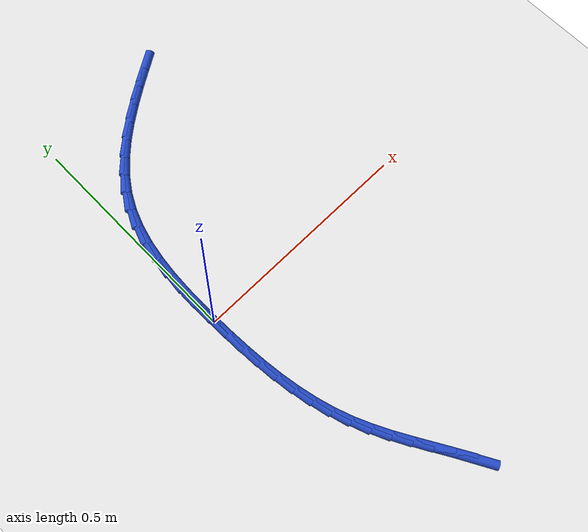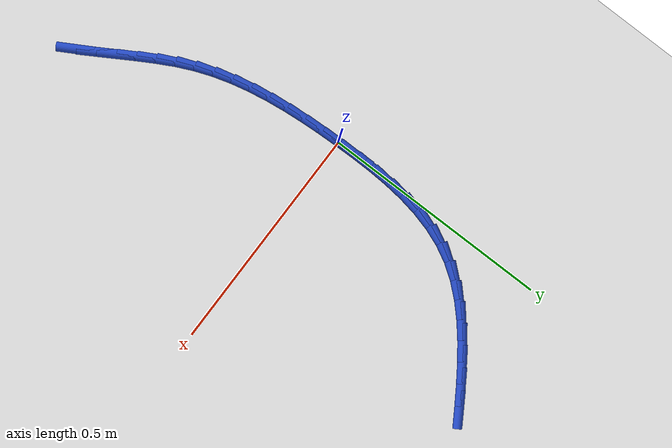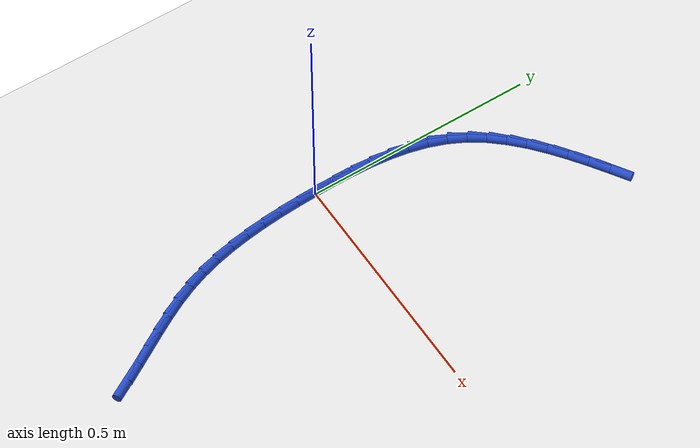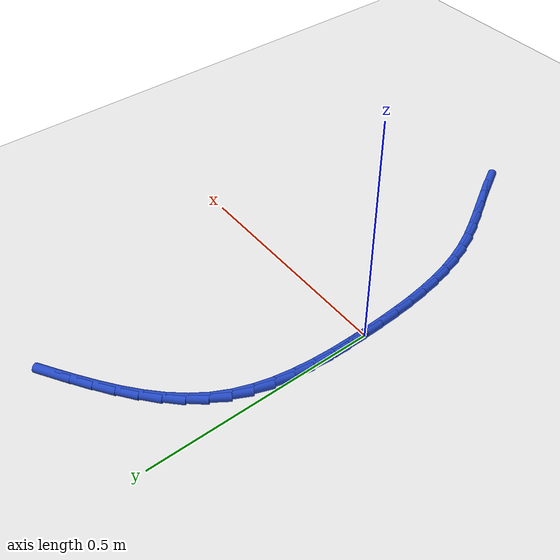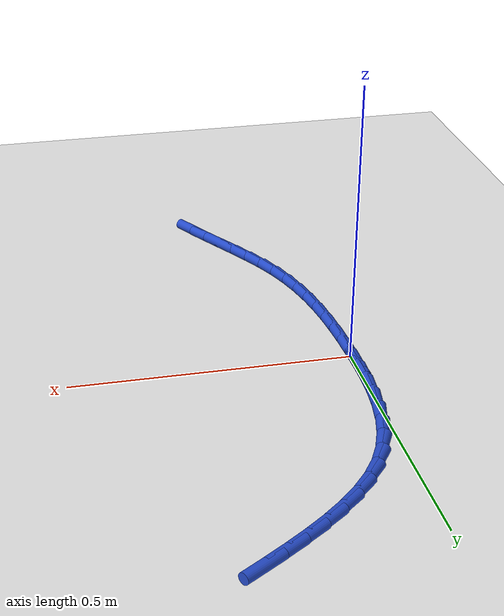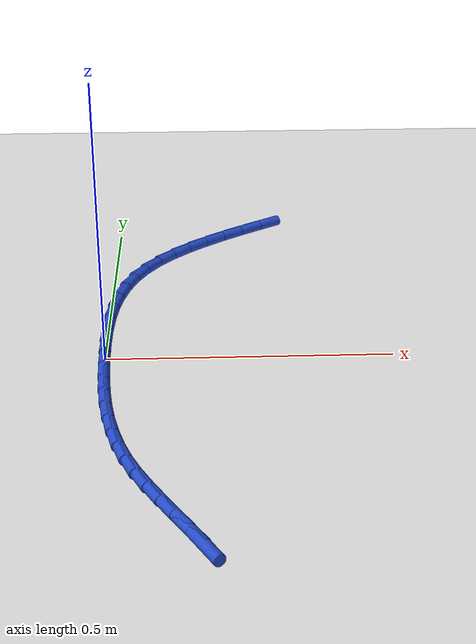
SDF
<sdf version="1.6">
 <world name="default">
  <model name="ground_plane">
   <static>1</static>
   <link name="link">
    <collision name="collision">
     <geometry><plane><normal>0 0 1</normal><size>100 100</size></plane></geometry>
     <surface><friction><ode><mu>100</mu><mu2>50</mu2></ode></friction></surface>
    </collision>
    <visual name="visual">
     <cast_shadows>0</cast_shadows>
     <geometry><plane><normal>0 0 1</normal><size>100 100</size></plane></geometry>
     <material>
      <script><uri>file://media/materials/scripts/gazebo.material</uri><name>Gazebo/WhiteGlow</name></script>
     </material>
    </visual>
   </link>
  </model>
  <model name="line">
   <link name="link_0">
    <pose>1.734723475976807e-18 -4.163336342344337e-17 0.01 0 1.57 -1.5516349954841655</pose>
    <collision name="collision">
     <geometry><cylinder><radius>0.01</radius><length>0.08</length></cylinder></geometry>
    </collision>
    <visual name="visual">
     <material>
      <script><name>Gazebo/Blue</name><uri>file://media/materials/scripts/gazebo.material</uri></script>
     </material>
     <geometry><cylinder><radius>0.01</radius><length>0.08</length></cylinder></geometry>
    </visual>
   </link>
   <link name="link_1">
    <pose>-0.0008375539873522851 0.04370528679694738 0.01 0 1.57 1.5622285135951908</pose>
    <collision name="collision">
     <geometry><cylinder><radius>0.01</radius><length>0.08</length></cylinder></geometry>
    </collision>
    <visual name="visual">
     <material>
      <script><name>Gazebo/Blue</name><uri>file://media/materials/scripts/gazebo.material</uri></script>
     </material>
     <geometry><cylinder><radius>0.01</radius><length>0.08</length></cylinder></geometry>
    </visual>
   </link>
   <link name="link_2">
    <pose>-0.00046359046159369344 0.08735170700139451 0.01 0 1.57 1.5220316965582523</pose>
    <collision name="collision">
     <geometry><cylinder><radius>0.01</radius><length>0.08</length></cylinder></geometry>
    </collision>
    <visual name="visual">
     <material>
      <script><name>Gazebo/Blue</name><uri>file://media/materials/scripts/gazebo.material</uri></script>
     </material>
     <geometry><cylinder><radius>0.01</radius><length>0.08</length></cylinder></geometry>
    </visual>
   </link>
   <link name="link_3">
    <pose>0.0016469247286420986 0.13059702614586688 0.01 0 1.57 1.4682887221408003</pose>
    <collision name="collision">
     <geometry><cylinder><radius>0.01</radius><length>0.08</length></cylinder></geometry>
    </collision>
    <visual name="visual">
     <material>
      <script><name>Gazebo/Blue</name><uri>file://media/materials/scripts/gazebo.material</uri></script>
     </material>
     <geometry><cylinder><radius>0.01</radius><length>0.08</length></cylinder></geometry>
    </visual>
   </link>
   <link name="link_4">
    <pose>0.006019025734721422 0.17309900976288986 0.01 0 1.57 1.3996400199315921</pose>
    <collision name="collision">
     <geometry><cylinder><radius>0.01</radius><length>0.08</length></cylinder></geometry>
    </collision>
    <visual name="visual">
     <material>
      <script><name>Gazebo/Blue</name><uri>file://media/materials/scripts/gazebo.material</uri></script>
     </material>
     <geometry><cylinder><radius>0.01</radius><length>0.08</length></cylinder></geometry>
    </visual>
   </link>
   <link name="link_5">
    <pose>0.013177746708010597 0.21451542338498897 0.01 0 1.57 1.3147112211460308</pose>
    <collision name="collision">
     <geometry><cylinder><radius>0.01</radius><length>0.08</length></cylinder></geometry>
    </collision>
    <visual name="visual">
     <material>
      <script><name>Gazebo/Blue</name><uri>file://media/materials/scripts/gazebo.material</uri></script>
     </material>
     <geometry><cylinder><radius>0.01</radius><length>0.08</length></cylinder></geometry>
    </visual>
   </link>
   <link name="link_6">
    <pose>0.023648121799875955 0.2545040325446897 0.01 0 1.57 1.212596981602703</pose>
    <collision name="collision">
     <geometry><cylinder><radius>0.01</radius><length>0.08</length></cylinder></geometry>
    </collision>
    <visual name="visual">
     <material>
      <script><name>Gazebo/Blue</name><uri>file://media/materials/scripts/gazebo.material</uri></script>
     </material>
     <geometry><cylinder><radius>0.01</radius><length>0.08</length></cylinder></geometry>
    </visual>
   </link>
   <link name="link_7">
    <pose>0.03795518516168382 0.29272260277451745 0.01 0 1.57 1.0936099985121328</pose>
    <collision name="collision">
     <geometry><cylinder><radius>0.01</radius><length>0.08</length></cylinder></geometry>
    </collision>
    <visual name="visual">
     <material>
      <script><name>Gazebo/Blue</name><uri>file://media/materials/scripts/gazebo.material</uri></script>
     </material>
     <geometry><cylinder><radius>0.01</radius><length>0.08</length></cylinder></geometry>
    </visual>
   </link>
   <link name="link_8">
    <pose>0.05662366469408644 0.32882906873882023 0.01 0 1.57 0.9673313420640605</pose>
    <collision name="collision">
     <geometry><cylinder><radius>0.01</radius><length>0.08</length></cylinder></geometry>
    </collision>
    <visual name="visual">
     <material>
      <script><name>Gazebo/Blue</name><uri>file://media/materials/scripts/gazebo.material</uri></script>
     </material>
     <geometry><cylinder><radius>0.01</radius><length>0.08</length></cylinder></geometry>
    </visual>
   </link>
   <link name="link_9">
    <pose>0.07991735100679209 0.36262547186658034 0.01 0 1.57 0.8571135771901214</pose>
    <collision name="collision">
     <geometry><cylinder><radius>0.01</radius><length>0.08</length></cylinder></geometry>
    </collision>
    <visual name="visual">
     <material>
      <script><name>Gazebo/Blue</name><uri>file://media/materials/scripts/gazebo.material</uri></script>
     </material>
     <geometry><cylinder><radius>0.01</radius><length>0.08</length></cylinder></geometry>
    </visual>
   </link>
   <link name="link_10">
    <pose>0.107363731733143 0.39432048860368857 0.01 0 1.57 0.7669333815725526</pose>
    <collision name="collision">
     <geometry><cylinder><radius>0.01</radius><length>0.08</length></cylinder></geometry>
    </collision>
    <visual name="visual">
     <material>
      <script><name>Gazebo/Blue</name><uri>file://media/materials/scripts/gazebo.material</uri></script>
     </material>
     <geometry><cylinder><radius>0.01</radius><length>0.08</length></cylinder></geometry>
    </visual>
   </link>
   <link name="link_11">
    <pose>0.1383613501248906 0.4241940069794073 0.01 0 1.57 0.6954750827378042</pose>
    <collision name="collision">
     <geometry><cylinder><radius>0.01</radius><length>0.08</length></cylinder></geometry>
    </collision>
    <visual name="visual">
     <material>
      <script><name>Gazebo/Blue</name><uri>file://media/materials/scripts/gazebo.material</uri></script>
     </material>
     <geometry><cylinder><radius>0.01</radius><length>0.08</length></cylinder></geometry>
    </visual>
   </link>
   <link name="link_12">
    <pose>0.17230874943378613 0.45252591502299905 0.01 0 1.57 0.640822471151388</pose>
    <collision name="collision">
     <geometry><cylinder><radius>0.01</radius><length>0.08</length></cylinder></geometry>
    </collision>
    <visual name="visual">
     <material>
      <script><name>Gazebo/Blue</name><uri>file://media/materials/scripts/gazebo.material</uri></script>
     </material>
     <geometry><cylinder><radius>0.01</radius><length>0.08</length></cylinder></geometry>
    </visual>
   </link>
   <link name="link_13">
    <pose>0.20860447291158105 0.4795961007637258 0.01 0 1.57 0.6011095735560099</pose>
    <collision name="collision">
     <geometry><cylinder><radius>0.01</radius><length>0.08</length></cylinder></geometry>
    </collision>
    <visual name="visual">
     <material>
      <script><name>Gazebo/Blue</name><uri>file://media/materials/scripts/gazebo.material</uri></script>
     </material>
     <geometry><cylinder><radius>0.01</radius><length>0.08</length></cylinder></geometry>
    </visual>
   </link>
   <link name="link_14">
    <pose>0.24664706381002666 0.5056844522308505 0.01 0 1.57 0.574834602583347</pose>
    <collision name="collision">
     <geometry><cylinder><radius>0.01</radius><length>0.08</length></cylinder></geometry>
    </collision>
    <visual name="visual">
     <material>
      <script><name>Gazebo/Blue</name><uri>file://media/materials/scripts/gazebo.material</uri></script>
     </material>
     <geometry><cylinder><radius>0.01</radius><length>0.08</length></cylinder></geometry>
    </visual>
   </link>
   <link name="link_15">
    <pose>0.2858350653808743 0.531070857453635 0.01 0 1.57 0.560982533098376</pose>
    <collision name="collision">
     <geometry><cylinder><radius>0.01</radius><length>0.08</length></cylinder></geometry>
    </collision>
    <visual name="visual">
     <material>
      <script><name>Gazebo/Blue</name><uri>file://media/materials/scripts/gazebo.material</uri></script>
     </material>
     <geometry><cylinder><radius>0.01</radius><length>0.08</length></cylinder></geometry>
    </visual>
   </link>
   <link name="link_176">
    <pose>0.17696957365514762 -0.5458029083225296 0.01 0 1.57 -1.0512881109188497</pose>
    <collision name="collision">
     <geometry><cylinder><radius>0.01</radius><length>0.08</length></cylinder></geometry>
    </collision>
    <visual name="visual">
     <material>
      <script><name>Gazebo/Blue</name><uri>file://media/materials/scripts/gazebo.material</uri></script>
     </material>
     <geometry><cylinder><radius>0.01</radius><length>0.08</length></cylinder></geometry>
    </visual>
   </link>
   <link name="link_177">
    <pose>0.15588718026341272 -0.5089397132476102 0.01 0 1.57 -1.0304229058842271</pose>
    <collision name="collision">
     <geometry><cylinder><radius>0.01</radius><length>0.08</length></cylinder></geometry>
    </collision>
    <visual name="visual">
     <material>
      <script><name>Gazebo/Blue</name><uri>file://media/materials/scripts/gazebo.material</uri></script>
     </material>
     <geometry><cylinder><radius>0.01</radius><length>0.08</length></cylinder></geometry>
    </visual>
   </link>
   <link name="link_178">
    <pose>0.13428439244731627 -0.47293130603755223 0.01 0 1.57 -1.0280349403715896</pose>
    <collision name="collision">
     <geometry><cylinder><radius>0.01</radius><length>0.08</length></cylinder></geometry>
    </collision>
    <visual name="visual">
     <material>
      <script><name>Gazebo/Blue</name><uri>file://media/materials/scripts/gazebo.material</uri></script>
     </material>
     <geometry><cylinder><radius>0.01</radius><length>0.08</length></cylinder></geometry>
    </visual>
   </link>
   <link name="link_179">
    <pose>0.11282839906561858 -0.43736040324866166 0.01 0 1.57 -1.0447366665360371</pose>
    <collision name="collision">
     <geometry><cylinder><radius>0.01</radius><length>0.08</length></cylinder></geometry>
    </collision>
    <visual name="visual">
     <material>
      <script><name>Gazebo/Blue</name><uri>file://media/materials/scripts/gazebo.material</uri></script>
     </material>
     <geometry><cylinder><radius>0.01</radius><length>0.08</length></cylinder></geometry>
    </visual>
   </link>
   <link name="link_180">
    <pose>0.09218638897707879 -0.40180972143724264 0.01 0 1.57 -1.0810835990494783</pose>
    <collision name="collision">
     <geometry><cylinder><radius>0.01</radius><length>0.08</length></cylinder></geometry>
    </collision>
    <visual name="visual">
     <material>
      <script><name>Gazebo/Blue</name><uri>file://media/materials/scripts/gazebo.material</uri></script>
     </material>
     <geometry><cylinder><radius>0.01</radius><length>0.08</length></cylinder></geometry>
    </visual>
   </link>
   <link name="link_181">
    <pose>0.07302555104045723 -0.3658619771596013 0.01 0 1.57 -1.137371866785556</pose>
    <collision name="collision">
     <geometry><cylinder><radius>0.01</radius><length>0.08</length></cylinder></geometry>
    </collision>
    <visual name="visual">
     <material>
      <script><name>Gazebo/Blue</name><uri>file://media/materials/scripts/gazebo.material</uri></script>
     </material>
     <geometry><cylinder><radius>0.01</radius><length>0.08</length></cylinder></geometry>
    </visual>
   </link>
   <link name="link_182">
    <pose>0.05601307411451388 -0.3290998869720429 0.01 0 1.57 -1.2101535662571572</pose>
    <collision name="collision">
     <geometry><cylinder><radius>0.01</radius><length>0.08</length></cylinder></geometry>
    </collision>
    <visual name="visual">
     <material>
      <script><name>Gazebo/Blue</name><uri>file://media/materials/scripts/gazebo.material</uri></script>
     </material>
     <geometry><cylinder><radius>0.01</radius><length>0.08</length></cylinder></geometry>
    </visual>
   </link>
   <link name="link_183">
    <pose>0.04170771837102488 -0.291168415860204 0.01 0 1.57 -1.2810180650721386</pose>
    <collision name="collision">
     <geometry><cylinder><radius>0.01</radius><length>0.08</length></cylinder></geometry>
    </collision>
    <visual name="visual">
     <material>
      <script><name>Gazebo/Blue</name><uri>file://media/materials/scripts/gazebo.material</uri></script>
     </material>
     <geometry><cylinder><radius>0.01</radius><length>0.08</length></cylinder></geometry>
    </visual>
   </link>
   <link name="link_184">
    <pose>0.030049090483454822 -0.25206798209295095 0.01 0 1.57 -1.343336693954286</pose>
    <collision name="collision">
     <geometry><cylinder><radius>0.01</radius><length>0.08</length></cylinder></geometry>
    </collision>
    <visual name="visual">
     <material>
      <script><name>Gazebo/Blue</name><uri>file://media/materials/scripts/gazebo.material</uri></script>
     </material>
     <geometry><cylinder><radius>0.01</radius><length>0.08</length></cylinder></geometry>
    </visual>
   </link>
   <link name="link_185">
    <pose>0.020757376259519202 -0.21192497248709902 0.01 0 1.57 -1.397088977135889</pose>
    <collision name="collision">
     <geometry><cylinder><radius>0.01</radius><length>0.08</length></cylinder></geometry>
    </collision>
    <visual name="visual">
     <material>
      <script><name>Gazebo/Blue</name><uri>file://media/materials/scripts/gazebo.material</uri></script>
     </material>
     <geometry><cylinder><radius>0.01</radius><length>0.08</length></cylinder></geometry>
    </visual>
   </link>
   <link name="link_186">
    <pose>0.013552503982236508 -0.1708659217032532 0.01 0 1.57 -1.4425133340185874</pose>
    <collision name="collision">
     <geometry><cylinder><radius>0.01</radius><length>0.08</length></cylinder></geometry>
    </collision>
    <visual name="visual">
     <material>
      <script><name>Gazebo/Blue</name><uri>file://media/materials/scripts/gazebo.material</uri></script>
     </material>
     <geometry><cylinder><radius>0.01</radius><length>0.08</length></cylinder></geometry>
    </visual>
   </link>
   <link name="link_187">
    <pose>0.008154401934624784 -0.12901736440201578 0.01 0 1.57 -1.4799796845488298</pose>
    <collision name="collision">
     <geometry><cylinder><radius>0.01</radius><length>0.08</length></cylinder></geometry>
    </collision>
    <visual name="visual">
     <material>
      <script><name>Gazebo/Blue</name><uri>file://media/materials/scripts/gazebo.material</uri></script>
     </material>
     <geometry><cylinder><radius>0.01</radius><length>0.08</length></cylinder></geometry>
    </visual>
   </link>
   <link name="link_188">
    <pose>0.004282998399702557 -0.08650583524399172 0.01 0 1.57 -1.5098984157295043</pose>
    <collision name="collision">
     <geometry><cylinder><radius>0.01</radius><length>0.08</length></cylinder></geometry>
    </collision>
    <visual name="visual">
     <material>
      <script><name>Gazebo/Blue</name><uri>file://media/materials/scripts/gazebo.material</uri></script>
     </material>
     <geometry><cylinder><radius>0.01</radius><length>0.08</length></cylinder></geometry>
    </visual>
   </link>
   <link name="link_189">
    <pose>0.0016582216604881844 -0.04345786888978521 0.01 0 1.57 -1.532657834524708</pose>
    <collision name="collision">
     <geometry><cylinder><radius>0.01</radius><length>0.08</length></cylinder></geometry>
    </collision>
    <visual name="visual">
     <material>
      <script><name>Gazebo/Blue</name><uri>file://media/materials/scripts/gazebo.material</uri></script>
     </material>
     <geometry><cylinder><radius>0.01</radius><length>0.08</length></cylinder></geometry>
    </visual>
   </link>
   <link name="link_190">
    <pose>1.214306433183765e-17 -2.706168622523819e-16 0.01 0 1.57 -1.548584369471166</pose>
    <collision name="collision">
     <geometry><cylinder><radius>0.01</radius><length>0.08</length></cylinder></geometry>
    </collision>
    <visual name="visual">
     <material>
      <script><name>Gazebo/Blue</name><uri>file://media/materials/scripts/gazebo.material</uri></script>
     </material>
     <geometry><cylinder><radius>0.01</radius><length>0.08</length></cylinder></geometry>
    </visual>
   </link>
   <link name="link_191">
    <pose>-0.0009717382987436067 0.043741236764758974 0.01 0 1.57 -1.548584369471166</pose>
    <collision name="collision">
     <geometry><cylinder><radius>0.01</radius><length>0.08</length></cylinder></geometry>
    </collision>
    <visual name="visual">
     <material>
      <script><name>Gazebo/Blue</name><uri>file://media/materials/scripts/gazebo.material</uri></script>
     </material>
     <geometry><cylinder><radius>0.01</radius><length>0.08</length></cylinder></geometry>
    </visual>
   </link>
  </model>
 </world>
</sdf>
